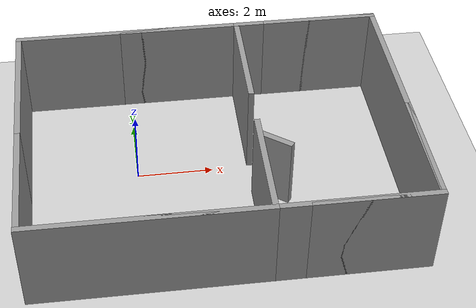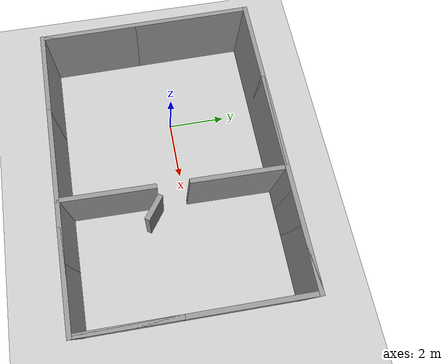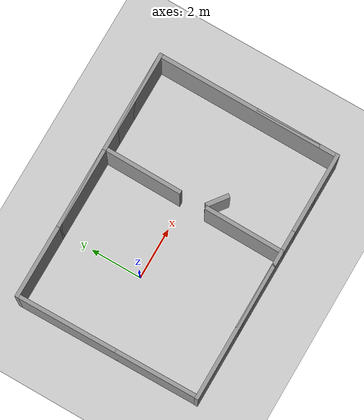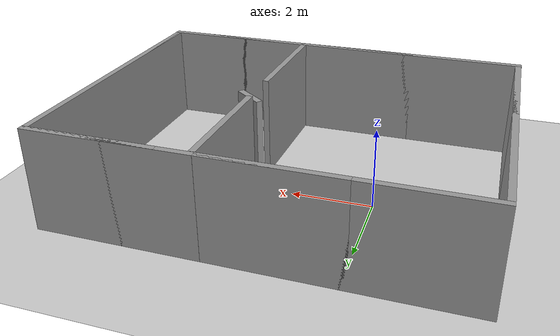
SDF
<sdf version="1.6">
 <world name="default">
  <light name="sun" type="directional">
   <pose>0 0 10 0 -0 0</pose>
   <diffuse>0.8 0.8 0.8 1</diffuse>
   <specular>0.2 0.2 0.2 1</specular>
   <attenuation>
    <range>1000</range>
    <constant>0.9</constant>
    <linear>0.01</linear>
    <quadratic>0.001</quadratic>
   </attenuation>
   <direction>-0.5 0.1 -0.9</direction>
  </light>
  <model name="ground_plane">
   <static>1</static>
   <link name="link">
    <collision name="collision">
     <geometry><plane><normal>0 0 1</normal><size>100 100</size></plane></geometry>
     <surface>
      <contact><collide_bitmask>65535</collide_bitmask></contact>
      <friction><ode><mu>100</mu><mu2>50</mu2></ode></friction>
     </surface>
    </collision>
    <visual name="visual">
     <cast_shadows>0</cast_shadows>
     <geometry><plane><normal>0 0 1</normal><size>100 100</size></plane></geometry>
     <material>
      <script><uri>file://media/materials/scripts/gazebo.material</uri><name>Gazebo/Grey</name></script>
     </material>
    </visual>
   </link>
  </model>
  <gravity>0 0 -9.8</gravity>
  <magnetic_field>6e-06 2.3e-05 -4.2e-05</magnetic_field>
  <atmosphere type="adiabatic"/>
  <physics name="default_physics" default="0" type="ode">
   <max_step_size>0.001</max_step_size>
   <real_time_factor>1</real_time_factor>
   <real_time_update_rate>1000</real_time_update_rate>
  </physics>
  <scene><ambient>0.4 0.4 0.4 1</ambient><background>0.7 0.7 0.7 1</background><shadows>1</shadows></scene>
  <audio><device>default</device></audio>
  <spherical_coordinates>
   <surface_model>EARTH_WGS84</surface_model>
   <latitude_deg>0</latitude_deg>
   <longitude_deg>0</longitude_deg>
   <elevation>0</elevation>
   <heading_deg>0</heading_deg>
  </spherical_coordinates>
  <model name="wall">
   <pose>3.03459 1.57191 0 0 0 -1.58293</pose>
   <link name="Wall_0">
    <collision name="Wall_0_Collision">
     <geometry><box><size>3 0.15 2.5</size></box></geometry>
     <pose>0 0 1.25 0 -0 0</pose>
    </collision>
    <visual name="Wall_0_Visual">
     <pose>0 0 1.25 0 -0 0</pose>
     <geometry><box><size>3 0.15 2.5</size></box></geometry>
     <material>
      <script><uri>file://media/materials/scripts/gazebo.material</uri><name>Gazebo/Grey</name></script>
      <ambient>1 1 1 1</ambient>
     </material>
     <meta><layer>0</layer></meta>
    </visual>
    <pose>0 0 0 0 -0 3.14159</pose>
   </link>
   <static>1</static>
  </model>
  <model name="wall_clone">
   <pose>2.98379 -2.43847 0 0 0 -1.58293</pose>
   <link name="Wall_0">
    <collision name="Wall_0_Collision">
     <geometry><box><size>3 0.15 2.5</size></box></geometry>
     <pose>0 0 1.25 0 -0 0</pose>
    </collision>
    <visual name="Wall_0_Visual">
     <pose>0 0 1.25 0 -0 0</pose>
     <geometry><box><size>3 0.15 2.5</size></box></geometry>
     <material>
      <script><uri>file://media/materials/scripts/gazebo.material</uri><name>Gazebo/Grey</name></script>
      <ambient>1 1 1 1</ambient>
     </material>
     <meta><layer>0</layer></meta>
    </visual>
    <pose>0 0 0 0 -0 3.14159</pose>
   </link>
   <static>1</static>
  </model>
  <model name="wall_6m">
   <pose>-0.01955 3.15158 0 0 -0 0</pose>
   <link name="Wall_0">
    <collision name="Wall_0_Collision">
     <geometry><box><size>3.16 0.15 2.5</size></box></geometry>
     <pose>0 0 1.25 0 -0 0</pose>
    </collision>
    <visual name="Wall_0_Visual">
     <pose>0 0 1.25 0 -0 0</pose>
     <geometry><box><size>3.16 0.15 2.5</size></box></geometry>
     <material>
      <script><uri>file://media/materials/scripts/gazebo.material</uri><name>Gazebo/Grey</name></script>
      <ambient>1 1 1 1</ambient>
     </material>
     <meta><layer>0</layer></meta>
    </visual>
    <pose>1.42 0 0 0 -0 0</pose>
   </link>
   <link name="Wall_1">
    <collision name="Wall_1_Collision">
     <geometry><box><size>6 0.15 2.5</size></box></geometry>
     <pose>0 0 1.25 0 -0 0</pose>
    </collision>
    <visual name="Wall_1_Visual">
     <pose>0 0 1.25 0 -0 0</pose>
     <geometry><box><size>6 0.15 2.5</size></box></geometry>
     <material>
      <script><uri>file://media/materials/scripts/gazebo.material</uri><name>Gazebo/Grey</name></script>
      <ambient>1 1 1 1</ambient>
     </material>
     <meta><layer>0</layer></meta>
    </visual>
    <pose>0 0 0 0 -0 3.14159</pose>
   </link>
   <static>1</static>
  </model>
  <model name="wall_4m">
   <pose>4.97742 3.15249 0 0 -0 0</pose>
   <link name="Wall_0">
    <collision name="Wall_0_Collision">
     <geometry><box><size>3.16 0.15 2.5</size></box></geometry>
     <pose>0 0 1.25 0 -0 0</pose>
    </collision>
    <visual name="Wall_0_Visual">
     <pose>0 0 1.25 0 -0 0</pose>
     <geometry><box><size>3.16 0.15 2.5</size></box></geometry>
     <material>
      <script><uri>file://media/materials/scripts/gazebo.material</uri><name>Gazebo/Grey</name></script>
      <ambient>1 1 1 1</ambient>
     </material>
     <meta><layer>0</layer></meta>
    </visual>
    <pose>0.42 0 0 0 -0 0</pose>
   </link>
   <link name="Wall_1">
    <collision name="Wall_1_Collision">
     <geometry><box><size>4 0.15 2.5</size></box></geometry>
     <pose>0 0 1.25 0 -0 0</pose>
    </collision>
    <visual name="Wall_1_Visual">
     <pose>0 0 1.25 0 -0 0</pose>
     <geometry><box><size>4 0.15 2.5</size></box></geometry>
     <material>
      <script><uri>file://media/materials/scripts/gazebo.material</uri><name>Gazebo/Grey</name></script>
      <ambient>1 1 1 1</ambient>
     </material>
     <meta><layer>0</layer></meta>
    </visual>
    <pose>0 0 0 0 -0 3.14159</pose>
   </link>
   <static>1</static>
  </model>
  <model name="wall_6m_0">
   <pose>0.04119 -3.99907 0 0 -0 0</pose>
   <link name="Wall_0">
    <collision name="Wall_0_Collision">
     <geometry><box><size>3.16 0.15 2.5</size></box></geometry>
     <pose>0 0 1.25 0 -0 0</pose>
    </collision>
    <visual name="Wall_0_Visual">
     <pose>0 0 1.25 0 -0 0</pose>
     <geometry><box><size>3.16 0.15 2.5</size></box></geometry>
     <material>
      <script><uri>file://media/materials/scripts/gazebo.material</uri><name>Gazebo/Grey</name></script>
      <ambient>1 1 1 1</ambient>
     </material>
     <meta><layer>0</layer></meta>
    </visual>
    <pose>1.42 0 0 0 -0 0</pose>
   </link>
   <link name="Wall_1">
    <collision name="Wall_1_Collision">
     <geometry><box><size>6 0.15 2.5</size></box></geometry>
     <pose>0 0 1.25 0 -0 0</pose>
    </collision>
    <visual name="Wall_1_Visual">
     <pose>0 0 1.25 0 -0 0</pose>
     <geometry><box><size>6 0.15 2.5</size></box></geometry>
     <material>
      <script><uri>file://media/materials/scripts/gazebo.material</uri><name>Gazebo/Grey</name></script>
      <ambient>1 1 1 1</ambient>
     </material>
     <meta><layer>0</layer></meta>
    </visual>
    <pose>0 0 0 0 -0 3.14159</pose>
   </link>
   <static>1</static>
  </model>
  <model name="wall_7m">
   <pose>-2.90993 -0.4231 0 0 0 -1.56057</pose>
   <link name="Wall_0">
    <collision name="Wall_0_Collision">
     <geometry><box><size>3.16 0.15 2.5</size></box></geometry>
     <pose>0 0 1.25 0 -0 0</pose>
    </collision>
    <visual name="Wall_0_Visual">
     <pose>0 0 1.25 0 -0 0</pose>
     <geometry><box><size>3.16 0.15 2.5</size></box></geometry>
     <material>
      <script><uri>file://media/materials/scripts/gazebo.material</uri><name>Gazebo/Grey</name></script>
      <ambient>1 1 1 1</ambient>
     </material>
     <meta><layer>0</layer></meta>
    </visual>
    <pose>1.92 0 0 0 -0 0</pose>
   </link>
   <link name="Wall_1">
    <collision name="Wall_1_Collision">
     <geometry><box><size>7 0.15 2.5</size></box></geometry>
     <pose>0 0 1.25 0 -0 0</pose>
    </collision>
    <visual name="Wall_1_Visual">
     <pose>0 0 1.25 0 -0 0</pose>
     <geometry><box><size>7 0.15 2.5</size></box></geometry>
     <material>
      <script><uri>file://media/materials/scripts/gazebo.material</uri><name>Gazebo/Grey</name></script>
      <ambient>1 1 1 1</ambient>
     </material>
     <meta><layer>0</layer></meta>
    </visual>
    <pose>0 0 0 0 -0 3.14159</pose>
   </link>
   <static>1</static>
  </model>
  <model name="wall_7m_0">
   <pose>6.88702 -0.423123 0 0 0 -1.57446</pose>
   <link name="Wall_0">
    <collision name="Wall_0_Collision">
     <geometry><box><size>3.16 0.15 2.5</size></box></geometry>
     <pose>0 0 1.25 0 -0 0</pose>
    </collision>
    <visual name="Wall_0_Visual">
     <pose>0 0 1.25 0 -0 0</pose>
     <geometry><box><size>3.16 0.15 2.5</size></box></geometry>
     <material>
      <script><uri>file://media/materials/scripts/gazebo.material</uri><name>Gazebo/Grey</name></script>
      <ambient>1 1 1 1</ambient>
     </material>
     <meta><layer>0</layer></meta>
    </visual>
    <pose>1.92 0 0 0 -0 0</pose>
   </link>
   <link name="Wall_1">
    <collision name="Wall_1_Collision">
     <geometry><box><size>7 0.15 2.5</size></box></geometry>
     <pose>0 0 1.25 0 -0 0</pose>
    </collision>
    <visual name="Wall_1_Visual">
     <pose>0 0 1.25 0 -0 0</pose>
     <geometry><box><size>7 0.15 2.5</size></box></geometry>
     <material>
      <script><uri>file://media/materials/scripts/gazebo.material</uri><name>Gazebo/Grey</name></script>
      <ambient>1 1 1 1</ambient>
     </material>
     <meta><layer>0</layer></meta>
    </visual>
    <pose>0 0 0 0 -0 3.14159</pose>
   </link>
   <static>1</static>
  </model>
  <model name="wall_4m_0">
   <pose>4.95386 -3.99874 0 0 -0 0</pose>
   <link name="Wall_0">
    <collision name="Wall_0_Collision">
     <geometry><box><size>3.16 0.15 2.5</size></box></geometry>
     <pose>0 0 1.25 0 -0 0</pose>
    </collision>
    <visual name="Wall_0_Visual">
     <pose>0 0 1.25 0 -0 0</pose>
     <geometry><box><size>3.16 0.15 2.5</size></box></geometry>
     <material>
      <script><uri>file://media/materials/scripts/gazebo.material</uri><name>Gazebo/Grey</name></script>
      <ambient>1 1 1 1</ambient>
     </material>
     <meta><layer>0</layer></meta>
    </visual>
    <pose>0.42 0 0 0 -0 0</pose>
   </link>
   <link name="Wall_1">
    <collision name="Wall_1_Collision">
     <geometry><box><size>4 0.15 2.5</size></box></geometry>
     <pose>0 0 1.25 0 -0 0</pose>
    </collision>
    <visual name="Wall_1_Visual">
     <pose>0 0 1.25 0 -0 0</pose>
     <geometry><box><size>4 0.15 2.5</size></box></geometry>
     <material>
      <script><uri>file://media/materials/scripts/gazebo.material</uri><name>Gazebo/Grey</name></script>
      <ambient>1 1 1 1</ambient>
     </material>
     <meta><layer>0</layer></meta>
    </visual>
    <pose>0 0 0 0 -0 3.14159</pose>
   </link>
   <static>1</static>
  </model>
  <model name="door">
   <pose>3.43587 -1.13231 -0.03269 0 0 -0.648302</pose>
   <link name="Door_0">
    <collision name="Door_0_Collision">
     <geometry><box><size>0.9 0.17 2</size></box></geometry>
     <pose>0 0 1 0 -0 0</pose>
    </collision>
    <visual name="Door_0_Visual">
     <pose>0 0 1 0 -0 0</pose>
     <geometry><box><size>0.9 0.17 2</size></box></geometry>
     <material>
      <script><uri>file://media/materials/scripts/gazebo.material</uri><name>Gazebo/Grey</name></script>
     </material>
    </visual>
    <pose>0.055427 0.044215 0 0 -0 0</pose>
   </link>
   <static>1</static>
  </model>
 </world>
</sdf>
